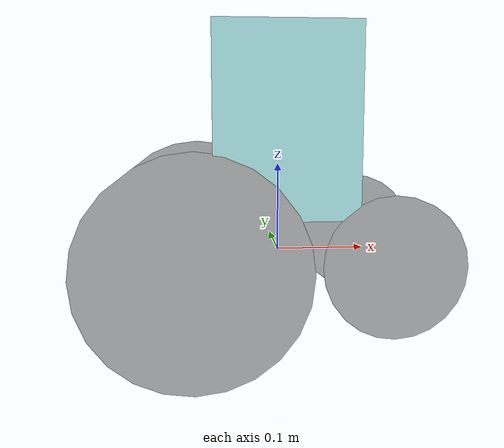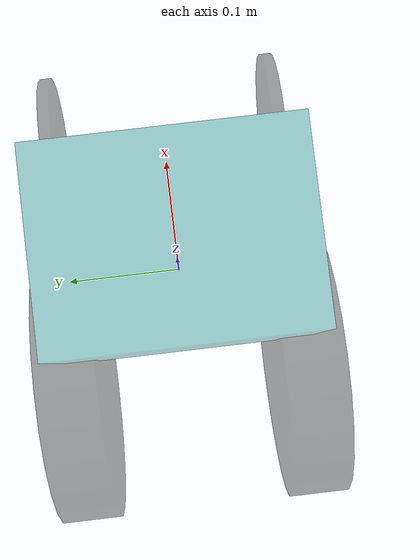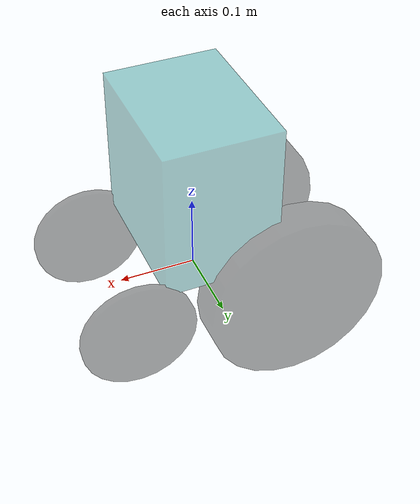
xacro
<robot name="my_robot" xmlns:xacro="http://wiki.ros.org/xacro">
    <xacro:property name="footprint_radius" value="0.001"/>
    <xacro:property name="baselink_heigh" value="0.2"/>
    <xacro:property name="baselink_width" value="0.2"/>
    <xacro:property name="baselink_length" value="0.15"/>
    <xacro:property name="baselink_mass" value="2"/>
    <xacro:property name="distance_to_ground" value="0.05"/>
    <xacro:property name="base_joint_z" value="${baselink_heigh/2 + distance_to_ground}"/>

    <!-- base_link -->
    <link name="base_footprint">
        <visual>
            <geometry>
                <sphere radius = "${footprint_radius}"/>
            </geometry>
        </visual>

    </link>
    <link name="base_link">
        <visual>
            <geometry>
                <box size="${baselink_length} ${baselink_width} ${baselink_heigh}"/>
            </geometry>
            <origin xyz="0 0 0" rpy="0 0 0"/>
            <material name="baselink_color">
                <color rgba="0 0.5 0.5 0.4"/>
            </material>
        </visual>
        <collision>
            <geometry>
                <box size="${baselink_length} ${baselink_width} ${baselink_heigh}"/>
            </geometry>
            <origin xyz="0 0 0" rpy="0 0 0"/>
        </collision>
        <!-- call the inertial params in head.urdf.xacro -->
        <xacro:cylinder_inertial_matrix m="${baselink_mass}" r="${baselink_width/2}" h="${baselink_heigh}"/>
    </link>
    <gazebo reference="base_link">
        <material>Gazebo/Yellow</material>
    </gazebo>
    <joint name="link2footprint" type="fixed">
        <parent link="base_footprint" />
        <child link="base_link"/>
        <origin xyz="0 0 ${base_joint_z}" rpy="0 0 0"/>
    </joint>

    <!-- wheel -->
    <xacro:property name="wheel_radius" value="0.12"/>
    <xacro:property name="wheel_lenth" value="0.05"/>
    <xacro:property name="wheel_mass" value="0.05"/>
    <xacro:property name="PI" value="3.1415"/>

    <xacro:property name="wheel_joint_z" value="${ (baselink_heigh/2 + distance_to_ground - wheel_radius) * -1}"/>

    <!-- wheel_name = left of right; flag = 1 or -1 -->
    <xacro:macro name="wheel_func" params="wheel_name flag">
        <link name="${wheel_name}_wheel">
            <visual>
                <geometry>
                    <cylinder radius="${wheel_radius}" length="${wheel_lenth}"/>
                </geometry>
                <origin xyz="0 0 0" rpy="${PI/2} 0 0"/>
                <material name="wheel_color">
                    <color rgba="0 0 0 0.4"/>
                </material>
            </visual>
            <collision>
                <geometry>
                    <cylinder radius="${wheel_radius}" length="${wheel_lenth}"/>
                </geometry>
                <origin xyz="0 0 0" rpy="${PI/2} 0 0"/>
            </collision>
            <xacro:cylinder_inertial_matrix m="${wheel_mass}" r="${wheel_radius}" h="${wheel_lenth}"/>
        </link>
        <gazebo reference="${wheel_name}_wheel">
            <material>Gazebo/Red</material>
        </gazebo>
        <joint name="${wheel_name}_wheel2baselink" type="continuous">
            <parent link="base_footprint"/>
            <child link="${wheel_name}_wheel"/>
            <origin xyz="-${baselink_length/2+0.02} ${baselink_width/2*flag} 0" rpy="0 0 0"/>
            <axis xyz="0 1 0"/>
        </joint>
    </xacro:macro>
    <xacro:wheel_func wheel_name="left" flag="1"/>
    <xacro:wheel_func wheel_name="right" flag="-1"/>
    <!-- wheel_name = left of right; flag = 1 or -1 -->

    <!--front wheel(supported)-->
    <xacro:property name="support_wheel_radius" value="0.075" />
    <xacro:property name="support_wheel_length" value="0.01" />
    <xacro:property name="support_wheel_m" value="0.03" />
    <xacro:macro name="add_support_wheel" params="name flag" >
        <link name="${name}_wheel">
            <visual>
                <geometry>
                    <cylinder radius="${support_wheel_radius}" length="${support_wheel_length}"/>
                </geometry>
                <origin xyz="0 0 0" rpy="${PI/2} 0 0" />
                <material name="wheel_color" />
            </visual>
            <collision>
                <geometry>
                    <cylinder radius="${support_wheel_radius}" length="${support_wheel_length}"/>
                </geometry>
                <origin xyz="0 0 0" rpy="${PI/2} 0 0" />
            </collision>
            <xacro:cylinder_inertial_matrix m="${support_wheel_m}" r="${support_wheel_radius}" h="${support_wheel_length}"/>
        </link>

        <joint name="${name}_wheel2base_link" type="continuous">
            <parent link="base_footprint" />
            <child link="${name}_wheel" />
            <origin xyz="${baselink_length/2 + support_wheel_radius/2} ${baselink_width/2*flag} 0" rpy="0 0 0"/>
            <axis xyz="0 1 0"/>
        </joint>
        <gazebo reference="${name}_wheel">
            <material>Gazebo/Red</material>
        </gazebo>
    </xacro:macro>

    <xacro:add_support_wheel name="frontleft" flag="1" />
    <xacro:add_support_wheel name="frontright" flag="-1" />

</robot>
